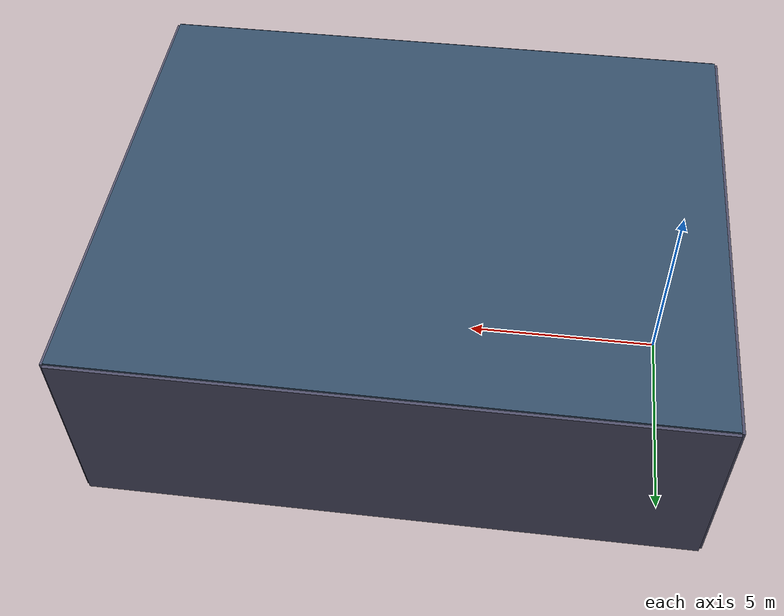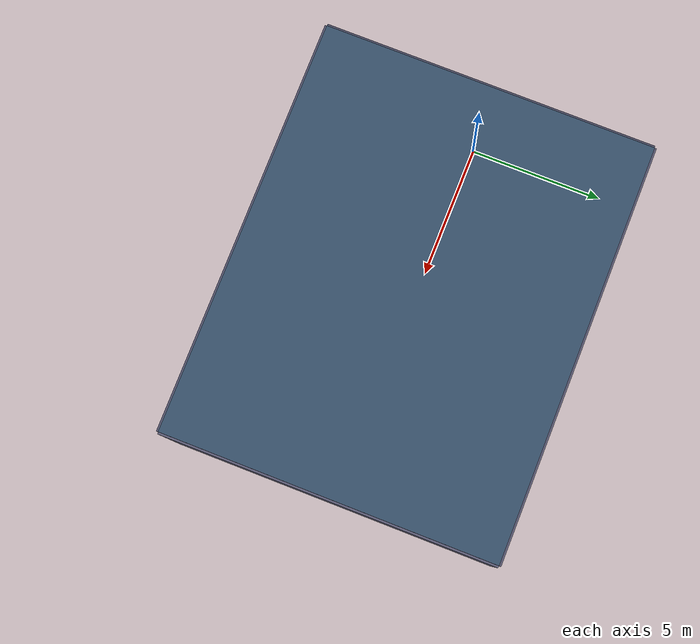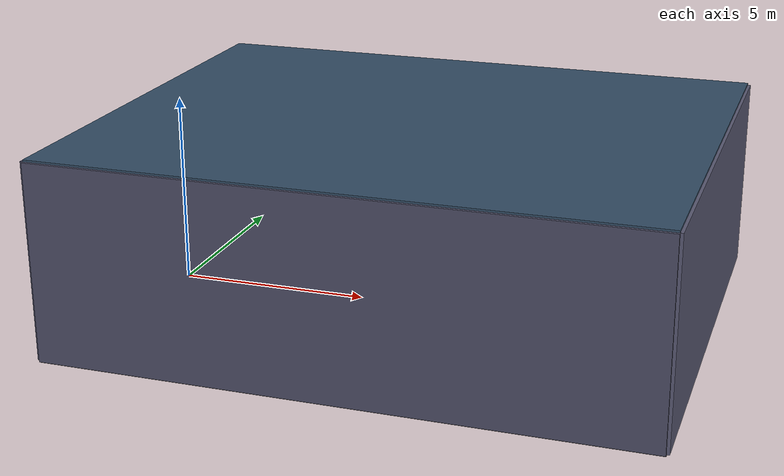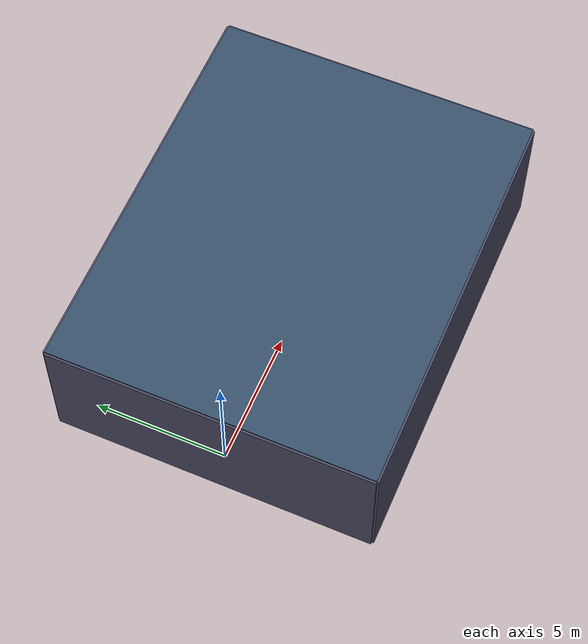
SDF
<?xml version="1.0"?>

<sdf version="1.6">
  <world name="dave_sonar_test">

    <!-- ═══════════════════════════════════════════════════════
         PHYSICS + CORE PLUGINS
    ═══════════════════════════════════════════════════════ -->
    <physics name="1ms" type="ignored">
      <max_step_size>0.001</max_step_size>
      <real_time_factor>1.0</real_time_factor>
    </physics>

    <plugin filename="gz-sim-physics-system"
            name="gz::sim::systems::Physics"/>
    <plugin filename="gz-sim-sensors-system"
            name="gz::sim::systems::Sensors">
      <render_engine>ogre2</render_engine>
    </plugin>
    <plugin filename="gz-sim-user-commands-system"
            name="gz::sim::systems::UserCommands"/>
    <plugin filename="gz-sim-scene-broadcaster-system"
            name="gz::sim::systems::SceneBroadcaster"/>
    <plugin filename="multibeam_sonar_system"
            name="custom::MultibeamSonarSystem"/>

    <!-- ═══════════════════════════════════════════════════════
         LIGHTING — dim underwater-style ambient
    ═══════════════════════════════════════════════════════ -->
    <light name="sun" type="directional">
      <cast_shadows>false</cast_shadows>
      <pose>0 0 20 0 0 0</pose>
      <diffuse>0.4 0.5 0.6 1</diffuse>
      <specular>0.1 0.1 0.1 1</specular>
      <direction>0.1 0.1 -1</direction>
    </light>

    <scene>
      <ambient>0.15 0.2 0.25 1</ambient>
      <background>0.05 0.08 0.12 1</background>
      <shadows>false</shadows>
    </scene>

    <!-- ═══════════════════════════════════════════════════════
         GUI
    ═══════════════════════════════════════════════════════ -->
    <gui fullscreen="0">

      <plugin filename="MinimalScene" name="3D View">
        <gz-gui>
          <title>3D View</title>
          <property type="bool"   key="showTitleBar">false</property>
          <property type="string" key="state">docked</property>
        </gz-gui>
        <engine>ogre2</engine>
        <scene>scene</scene>
        <ambient_light>0.3 0.4 0.5</ambient_light>
        <background_color>0.05 0.08 0.12</background_color>
        <!-- Camera sits behind the sonar, slightly above, looking along +X -->
        <camera_pose>-4 0 4 0 0.4 0</camera_pose>
      </plugin>

      <plugin filename="EntityContextMenuPlugin" name="Entity context menu">
        <gz-gui>
          <property key="state"        type="string">floating</property>
          <property key="width"        type="double">5</property>
          <property key="height"       type="double">5</property>
          <property key="showTitleBar" type="bool">false</property>
        </gz-gui>
      </plugin>

      <plugin filename="GzSceneManager" name="Scene Manager">
        <gz-gui>
          <property key="resizable"    type="bool">false</property>
          <property key="state"        type="string">floating</property>
          <property key="showTitleBar" type="bool">false</property>
        </gz-gui>
      </plugin>

      <plugin filename="InteractiveViewControl" name="Interactive view control">
        <gz-gui>
          <property key="resizable"    type="bool">false</property>
          <property key="state"        type="string">floating</property>
          <property key="showTitleBar" type="bool">false</property>
        </gz-gui>
      </plugin>

      <plugin filename="CameraTracking" name="Camera Tracking">
        <gz-gui>
          <property key="resizable"    type="bool">false</property>
          <property key="state"        type="string">floating</property>
          <property key="showTitleBar" type="bool">false</property>
        </gz-gui>
      </plugin>

      <plugin filename="WorldControl" name="World control">
        <gz-gui>
          <title>World control</title>
          <property type="bool"   key="showTitleBar">false</property>
          <property type="bool"   key="resizable">false</property>
          <property type="double" key="height">72</property>
          <property type="double" key="z">1</property>
          <property type="string" key="state">floating</property>
          <anchors target="3D View">
            <line own="left"   target="left"/>
            <line own="bottom" target="bottom"/>
          </anchors>
        </gz-gui>
        <play_pause>true</play_pause>
        <step>true</step>
        <start_paused>true</start_paused>
        <use_event>true</use_event>
      </plugin>

      <plugin filename="WorldStats" name="World stats">
        <gz-gui>
          <title>World stats</title>
          <property type="bool"   key="showTitleBar">false</property>
          <property type="bool"   key="resizable">false</property>
          <property type="double" key="height">110</property>
          <property type="double" key="width">290</property>
          <property type="double" key="z">1</property>
          <property type="string" key="state">floating</property>
          <anchors target="3D View">
            <line own="right"  target="right"/>
            <line own="bottom" target="bottom"/>
          </anchors>
        </gz-gui>
        <sim_time>true</sim_time>
        <real_time>true</real_time>
        <real_time_factor>true</real_time_factor>
        <iterations>true</iterations>
      </plugin>

      <plugin filename="ComponentInspector" name="Component inspector">
        <gz-gui>
          <property type="string" key="state">docked</property>
        </gz-gui>
      </plugin>

      <plugin filename="EntityTree" name="Entity tree">
        <gz-gui>
          <property type="string" key="state">docked</property>
        </gz-gui>
      </plugin>

    </gui>

    <!-- Back wall — behind sensor, blocks any rear-lobe -->
    <model name="tank_wall_back">
      <static>true</static>
      <pose>-1.0 0 2.5 0 0 0</pose>
      <link name="link">
        <collision name="col">
          <geometry><box><size>0.15 12.0 5.0</size></box></geometry>
        </collision>
        <visual name="vis">
          <geometry><box><size>0.15 12.0 5.0</size></box></geometry>
          <material>
            <ambient>0.3 0.3 0.4 1</ambient>
            <diffuse>0.3 0.3 0.4 1</diffuse>
          </material>
        </visual>
      </link>
    </model>

    <!-- Far end wall — max range return, specular normal along X -->
    <model name="tank_wall_far">
      <static>true</static>
      <!-- At x=14 m: provides a bright specular return at 14 m range -->
      <pose>14.0 0 2.5 0 0 0</pose>
      <link name="link">
        <collision name="col">
          <geometry><box><size>0.15 12.0 5.0</size></box></geometry>
        </collision>
        <visual name="vis">
          <geometry><box><size>0.15 12.0 5.0</size></box></geometry>
          <material>
            <ambient>0.35 0.35 0.45 1</ambient>
            <diffuse>0.35 0.35 0.45 1</diffuse>
          </material>
        </visual>
      </link>
    </model>

    <!-- Left wall (y = +6) -->
    <model name="tank_wall_left">
      <static>true</static>
      <pose>6.5 6.0 2.5 0 0 0</pose>
      <link name="link">
        <collision name="col">
          <geometry><box><size>15.0 0.15 5.0</size></box></geometry>
        </collision>
        <visual name="vis">
          <geometry><box><size>15.0 0.15 5.0</size></box></geometry>
          <material>
            <ambient>0.3 0.3 0.4 1</ambient>
            <diffuse>0.3 0.3 0.4 1</diffuse>
          </material>
        </visual>
      </link>
    </model>

    <!-- Right wall (y = -6) -->
    <model name="tank_wall_right">
      <static>true</static>
      <pose>6.5 -6.0 2.5 0 0 0</pose>
      <link name="link">
        <collision name="col">
          <geometry><box><size>15.0 0.15 5.0</size></box></geometry>
        </collision>
        <visual name="vis">
          <geometry><box><size>15.0 0.15 5.0</size></box></geometry>
          <material>
            <ambient>0.3 0.3 0.4 1</ambient>
            <diffuse>0.3 0.3 0.4 1</diffuse>
          </material>
        </visual>
      </link>
    </model>

    <!-- Floor (z = 0) — diffuse Lambert reflector, low reflectivity -->
    <model name="tank_floor">
      <static>true</static>
      <pose>6.5 0 0.0 0 0 0</pose>
      <link name="link">
        <collision name="col">
          <geometry><box><size>15.0 12.0 0.10</size></box></geometry>
        </collision>
        <visual name="vis">
          <geometry><box><size>15.0 12.0 0.10</size></box></geometry>
          <material>
            <ambient>0.25 0.25 0.3 1</ambient>
            <diffuse>0.25 0.25 0.3 1</diffuse>
          </material>
        </visual>
      </link>
    </model>

    <!-- Ceiling (z = 5) — simulates water surface / tank top -->
    <model name="tank_ceiling">
      <static>true</static>
      <pose>6.5 0 5.0 0 0 0</pose>
      <link name="link">
        <collision name="col">
          <geometry><box><size>15.0 12.0 0.10</size></box></geometry>
        </collision>
        <visual name="vis">
          <geometry><box><size>15.0 12.0 0.10</size></box></geometry>
          <material>
            <ambient>0.2 0.3 0.4 1</ambient>
            <diffuse>0.2 0.3 0.4 1</diffuse>
          </material>
        </visual>
      </link>
    </model>

    <!--
      A1: Vertical cylinder on-axis at 1.5 m.
          Expected: bright curved return centred on beam 0.
          Tests: near-field range accuracy.
    -->
    <model name="A1_cylinder_onaxis_near">
      <static>true</static>
      <pose>1.5 0.0 2.0 0 0 0</pose>
      <link name="link">
        <collision name="col">
          <geometry>
            <cylinder><radius>0.15</radius><length>1.2</length></cylinder>
          </geometry>
        </collision>
        <visual name="vis">
          <geometry>
            <cylinder><radius>0.15</radius><length>1.2</length></cylinder>
          </geometry>
          <material>
            <ambient>1.0 0.9 0.1 1</ambient>
            <diffuse>1.0 0.9 0.1 1</diffuse>
          </material>
        </visual>
      </link>
    </model>

    <model name="A2_sphere_offaxis_left_near">
      <static>true</static>
      <!-- y = 2.0*tan(20°) ≈ 0.73 m -->
      <pose>2.0 0.73 2.0 0 0 0</pose>
      <link name="link">
        <collision name="col">
          <geometry><sphere><radius>0.20</radius></sphere></geometry>
        </collision>
        <visual name="vis">
          <geometry><sphere><radius>0.20</radius></sphere></geometry>
          <material>
            <ambient>0.2 0.8 0.3 1</ambient>
            <diffuse>0.2 0.8 0.3 1</diffuse>
          </material>
        </visual>
      </link>
    </model>

    <!--
      A3: Small sphere off-axis right (-y) at 2.0 m, ~20 deg bearing.
          Expected: symmetric return to A2 — tests beam pattern symmetry.
    -->
    <model name="A3_sphere_offaxis_right_near">
      <static>true</static>
      <pose>2.0 -0.73 2.0 0 0 0</pose>
      <link name="link">
        <collision name="col">
          <geometry><sphere><radius>0.20</radius></sphere></geometry>
        </collision>
        <visual name="vis">
          <geometry><sphere><radius>0.20</radius></sphere></geometry>
          <material>
            <ambient>0.2 0.8 0.3 1</ambient>
            <diffuse>0.2 0.8 0.3 1</diffuse>
          </material>
        </visual>
      </link>
    </model>

    <model name="A4_flat_wall_perpendicular_near">
      <static>true</static>
      <pose>3.0 0.0 2.0 0 0 0</pose>
      <link name="link">
        <collision name="col">
          <geometry><box><size>0.10 3.0 1.2</size></box></geometry>
        </collision>
        <visual name="vis">
          <geometry><box><size>0.10 3.0 1.2</size></box></geometry>
          <material>
            <ambient>0.9 0.9 0.9 1</ambient>
            <diffuse>0.9 0.9 0.9 1</diffuse>
          </material>
        </visual>
      </link>
    </model>

    <model name="B1a_cylinder_resolution_left">
      <static>true</static>
      <pose>5.0 0.20 2.0 0 0 0</pose>
      <link name="link">
        <collision name="col">
          <geometry>
            <cylinder><radius>0.12</radius><length>1.2</length></cylinder>
          </geometry>
        </collision>
        <visual name="vis">
          <geometry>
            <cylinder><radius>0.12</radius><length>1.2</length></cylinder>
          </geometry>
          <material>
            <ambient>0.0 0.6 1.0 1</ambient>
            <diffuse>0.0 0.6 1.0 1</diffuse>
          </material>
        </visual>
      </link>
    </model>

    <model name="B1b_cylinder_resolution_right">
      <static>true</static>
      <pose>5.0 -0.20 2.0 0 0 0</pose>
      <link name="link">
        <collision name="col">
          <geometry>
            <cylinder><radius>0.12</radius><length>1.2</length></cylinder>
          </geometry>
        </collision>
        <visual name="vis">
          <geometry>
            <cylinder><radius>0.12</radius><length>1.2</length></cylinder>
          </geometry>
          <material>
            <ambient>0.0 0.6 1.0 1</ambient>
            <diffuse>0.0 0.6 1.0 1</diffuse>
          </material>
        </visual>
      </link>
    </model>

    <model name="B2_cylinder_tilted_midleft">
      <static>true</static>
      <!-- x=5.5*cos(30°)=4.76, y=5.5*sin(30°)=2.75 -->
      <pose>4.76 2.75 2.0 0 0 0.785</pose>
      <link name="link">
        <collision name="col">
          <geometry>
            <cylinder><radius>0.18</radius><length>1.4</length></cylinder>
          </geometry>
        </collision>
        <visual name="vis">
          <geometry>
            <cylinder><radius>0.18</radius><length>1.4</length></cylinder>
          </geometry>
          <material>
            <ambient>1.0 0.4 0.0 1</ambient>
            <diffuse>1.0 0.4 0.0 1</diffuse>
          </material>
        </visual>
      </link>
    </model>

    <model name="B3_angled_wall_right">
      <static>true</static>
      <!-- x=6.0*cos(-25°)=5.44, y=6.0*sin(-25°)=-2.54 -->
      <!-- Wall faces 45 deg away from sonar normal -->
      <pose>5.44 -2.54 2.0 0 0 0.785</pose>
      <link name="link">
        <collision name="col">
          <geometry><box><size>0.10 2.5 1.2</size></box></geometry>
        </collision>
        <visual name="vis">
          <geometry><box><size>0.10 2.5 1.2</size></box></geometry>
          <material>
            <ambient>0.9 0.5 0.8 1</ambient>
            <diffuse>0.9 0.5 0.8 1</diffuse>
          </material>
        </visual>
      </link>
    </model>

    <!--
      B4: Large sphere on-axis at 7.0 m.
          Provides a clean, range-stable return at mid-far boundary.
          Tests: spherical target TS (constant with angle).
    -->
    <model name="B4_large_sphere_onaxis_mid">
      <static>true</static>
      <pose>7.0 0.0 2.0 0 0 0</pose>
      <link name="link">
        <collision name="col">
          <geometry><sphere><radius>0.40</radius></sphere></geometry>
        </collision>
        <visual name="vis">
          <geometry><sphere><radius>0.40</radius></sphere></geometry>
          <material>
            <ambient>0.8 0.1 0.1 1</ambient>
            <diffuse>0.8 0.1 0.1 1</diffuse>
          </material>
        </visual>
      </link>
    </model>

    <!--
      B5: Tall vertical flat plate at 45 deg bearing left, 6.5 m range.
          Plate normal faces the sonar directly.
          Tests: off-axis specular return, beam pattern side lobes.
    -->
    <model name="B5_plate_45deg_left">
      <static>true</static>
      <!-- x=6.5*cos(45°)=4.60, y=6.5*sin(45°)=4.60 -->
      <!-- rotate 45 deg so face points back at sonar -->
      <pose>4.60 4.60 2.0 0 0 -0.785</pose>
      <link name="link">
        <collision name="col">
          <geometry><box><size>0.10 2.0 1.2</size></box></geometry>
        </collision>
        <visual name="vis">
          <geometry><box><size>0.10 2.0 1.2</size></box></geometry>
          <material>
            <ambient>0.5 0.9 0.5 1</ambient>
            <diffuse>0.5 0.9 0.5 1</diffuse>
          </material>
        </visual>
      </link>
    </model>

    <!--
      C1: Large cylinder on-axis at 9.0 m.
          At 9 m range, TL = 2*(20*log10(9) + α*9) is significant.
          Tests: range-dependent intensity falloff.
    -->
    <model name="C1_large_cylinder_onaxis_far">
      <static>true</static>
      <pose>9.0 0.0 2.0 0 0 0</pose>
      <link name="link">
        <collision name="col">
          <geometry>
            <cylinder><radius>0.30</radius><length>1.4</length></cylinder>
          </geometry>
        </collision>
        <visual name="vis">
          <geometry>
            <cylinder><radius>0.30</radius><length>1.4</length></cylinder>
          </geometry>
          <material>
            <ambient>1.0 0.8 0.2 1</ambient>
            <diffuse>1.0 0.8 0.2 1</diffuse>
          </material>
        </visual>
      </link>
    </model>

    <!--
      C2: Large sphere at 30 deg left, 10.0 m range.
          Tests: far-field off-axis return.
    -->
    <model name="C2_sphere_30deg_far">
      <static>true</static>
      <!-- x=10*cos(30°)=8.66, y=10*sin(30°)=5.0 -->
      <pose>8.66 5.0 2.0 0 0 0</pose>
      <link name="link">
        <collision name="col">
          <geometry><sphere><radius>0.50</radius></sphere></geometry>
        </collision>
        <visual name="vis">
          <geometry><sphere><radius>0.50</radius></sphere></geometry>
          <material>
            <ambient>0.3 0.3 1.0 1</ambient>
            <diffuse>0.3 0.3 1.0 1</diffuse>
          </material>
        </visual>
      </link>
    </model>

    <!--
      C3: Flat wall at 11.0 m, 20 deg right, normal facing sonar.
          Expected: bright band in right sector at 11 m.
          Together with tank far wall at 14 m, creates layered returns.
    -->
    <model name="C3_flat_wall_far_right">
      <static>true</static>
      <!-- x=11*cos(-20°)=10.33, y=11*sin(-20°)=-3.76 -->
      <!-- rotate to face sonar: yaw = 20 deg -->
      <pose>10.33 -3.76 2.0 0 0 0.349</pose>
      <link name="link">
        <collision name="col">
          <geometry><box><size>0.10 3.0 1.2</size></box></geometry>
        </collision>
        <visual name="vis">
          <geometry><box><size>0.10 3.0 1.2</size></box></geometry>
          <material>
            <ambient>0.8 0.8 0.4 1</ambient>
            <diffuse>0.8 0.8 0.4 1</diffuse>
          </material>
        </visual>
      </link>
    </model>

    <!--
      D1: Cylinder at 55 deg left bearing, 4.0 m range.
          Should appear at beam edge or in side lobes.
    -->
    <model name="D1_cylinder_55deg_left">
      <static>true</static>
      <!-- x=4*cos(55°)=2.29, y=4*sin(55°)=3.28 -->
      <pose>2.29 3.28 2.0 0 0 0</pose>
      <link name="link">
        <collision name="col">
          <geometry>
            <cylinder><radius>0.20</radius><length>1.2</length></cylinder>
          </geometry>
        </collision>
        <visual name="vis">
          <geometry>
            <cylinder><radius>0.20</radius><length>1.2</length></cylinder>
          </geometry>
          <material>
            <ambient>0.7 0.0 0.7 1</ambient>
            <diffuse>0.7 0.0 0.7 1</diffuse>
          </material>
        </visual>
      </link>
    </model>

    <!--
      D2: Cylinder at 55 deg right bearing, 4.0 m range. Mirror of D1.
    -->
    <model name="D2_cylinder_55deg_right">
      <static>true</static>
      <pose>2.29 -3.28 2.0 0 0 0</pose>
      <link name="link">
        <collision name="col">
          <geometry>
            <cylinder><radius>0.20</radius><length>1.2</length></cylinder>
          </geometry>
        </collision>
        <visual name="vis">
          <geometry>
            <cylinder><radius>0.20</radius><length>1.2</length></cylinder>
          </geometry>
          <material>
            <ambient>0.7 0.0 0.7 1</ambient>
            <diffuse>0.7 0.0 0.7 1</diffuse>
          </material>
        </visual>
      </link>
    </model>

    <model name="E1_sphere_above_beam">
      <static>true</static>
      <pose>5.0 1.5 3.5 0 0 0</pose>
      <link name="link">
        <collision name="col">
          <geometry><sphere><radius>0.25</radius></sphere></geometry>
        </collision>
        <visual name="vis">
          <geometry><sphere><radius>0.25</radius></sphere></geometry>
          <material>
            <!-- White — easy to spot visually that it's above the slice -->
            <ambient>1.0 1.0 1.0 1</ambient>
            <diffuse>1.0 1.0 1.0 1</diffuse>
          </material>
        </visual>
      </link>
    </model>

    <!--
      E2: Sphere just inside beam at z=2.4 (grazing beam top edge).
          Expected: faint return, beam-edge amplitude.
          Tests: vertical beam pattern roll-off.
    -->
    <model name="E2_sphere_grazing_beam_top">
      <static>true</static>
      <pose>5.0 -1.5 2.4 0 0 0</pose>
      <link name="link">
        <collision name="col">
          <geometry><sphere><radius>0.20</radius></sphere></geometry>
        </collision>
        <visual name="vis">
          <geometry><sphere><radius>0.20</radius></sphere></geometry>
          <material>
            <ambient>0.8 0.6 0.1 1</ambient>
            <diffuse>0.8 0.6 0.1 1</diffuse>
          </material>
        </visual>
      </link>
    </model>

    <model name="E3_tall_cylinder_fullslice">
      <static>true</static>
      <pose>4.0 0.0 2.0 0 0 0</pose>
      <link name="link">
        <collision name="col">
          <geometry>
            <cylinder><radius>0.22</radius><length>1.8</length></cylinder>
          </geometry>
        </collision>
        <visual name="vis">
          <geometry>
            <cylinder><radius>0.22</radius><length>1.8</length></cylinder>
          </geometry>
          <material>
            <ambient>1.0 0.2 0.6 1</ambient>
            <diffuse>1.0 0.2 0.6 1</diffuse>
          </material>
        </visual>
      </link>
    </model>

    <!--
      F1: Front cylinder of tandem pair — on-axis at 3.5 m.
    -->
    <model name="F1_tandem_near_cylinder">
      <static>true</static>
      <pose>3.5 -1.0 2.0 0 0 0</pose>
      <link name="link">
        <collision name="col">
          <geometry>
            <cylinder><radius>0.12</radius><length>1.2</length></cylinder>
          </geometry>
        </collision>
        <visual name="vis">
          <geometry>
            <cylinder><radius>0.12</radius><length>1.2</length></cylinder>
          </geometry>
          <material>
            <ambient>0.0 1.0 0.8 1</ambient>
            <diffuse>0.0 1.0 0.8 1</diffuse>
          </material>
        </visual>
      </link>
    </model>

    <!--
      F2: Rear cylinder of tandem pair — same bearing as F1 but 2 m further.
          Both subtend the same beam. A-plot should show two peaks at 3.5 and 5.5 m.
    -->
    <model name="F2_tandem_far_cylinder">
      <static>true</static>
      <pose>5.5 -1.0 2.0 0 0 0</pose>
      <link name="link">
        <collision name="col">
          <geometry>
            <cylinder><radius>0.12</radius><length>1.2</length></cylinder>
          </geometry>
        </collision>
        <visual name="vis">
          <geometry>
            <cylinder><radius>0.12</radius><length>1.2</length></cylinder>
          </geometry>
          <material>
            <ambient>0.0 0.6 0.5 1</ambient>
            <diffuse>0.0 0.6 0.5 1</diffuse>
          </material>
        </visual>
      </link>
    </model>

    <!--
      G1: High reflectivity block (bright) at 8.0 m, 15 deg left.
          μ = 1e-2 equivalent (bright surface).
    -->
    <model name="G1_high_reflectivity_block">
      <static>true</static>
      <!-- x=8.0*cos(15°)=7.73, y=8.0*sin(15°)=2.07 -->
      <pose>7.73 2.07 2.0 0 0 0.262</pose>
      <link name="link">
        <collision name="col">
          <geometry><box><size>0.40 0.40 1.2</size></box></geometry>
        </collision>
        <visual name="vis">
          <geometry><box><size>0.40 0.40 1.2</size></box></geometry>
          <material>
            <!-- Near-white = high reflectivity -->
            <ambient>0.95 0.95 0.95 1</ambient>
            <diffuse>0.95 0.95 0.95 1</diffuse>
          </material>
        </visual>
      </link>
    </model>

    <!--
      G2: Low reflectivity block (dark) at 8.0 m, 15 deg right.
          Same geometry as G1 — only reflectivity differs.
          μ = 1e-5 equivalent (nearly acoustically transparent).
    -->
    <model name="G2_low_reflectivity_block">
      <static>true</static>
      <!-- x=8.0*cos(-15°)=7.73, y=8.0*sin(-15°)=-2.07 -->
      <pose>7.73 -2.07 2.0 0 0 -0.262</pose>
      <link name="link">
        <collision name="col">
          <geometry><box><size>0.40 0.40 1.2</size></box></geometry>
        </collision>
        <visual name="vis">
          <geometry><box><size>0.40 0.40 1.2</size></box></geometry>
          <material>
            <!-- Near-black = low reflectivity -->
            <ambient>0.08 0.08 0.10 1</ambient>
            <diffuse>0.08 0.08 0.10 1</diffuse>
          </material>
        </visual>
      </link>
    </model>

  </world>
</sdf>
